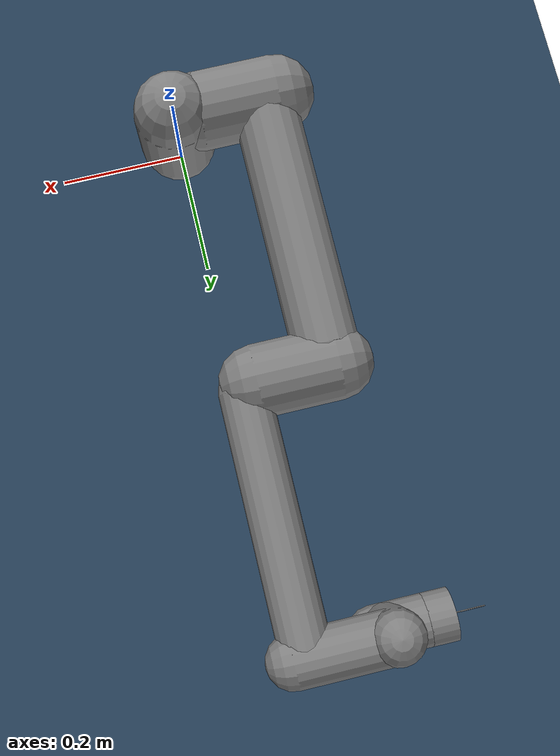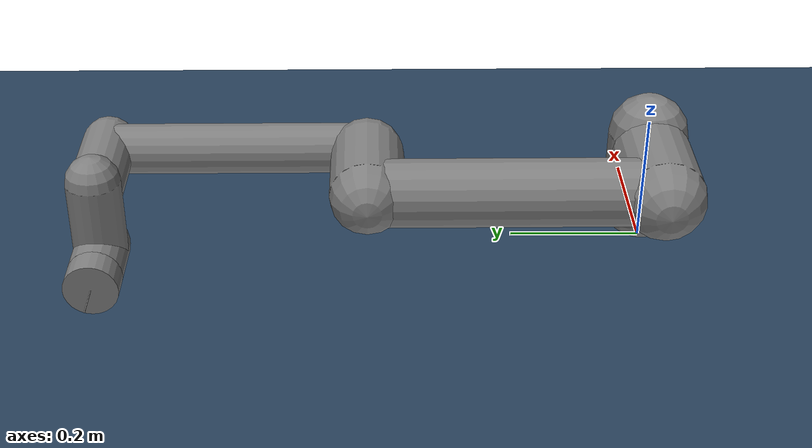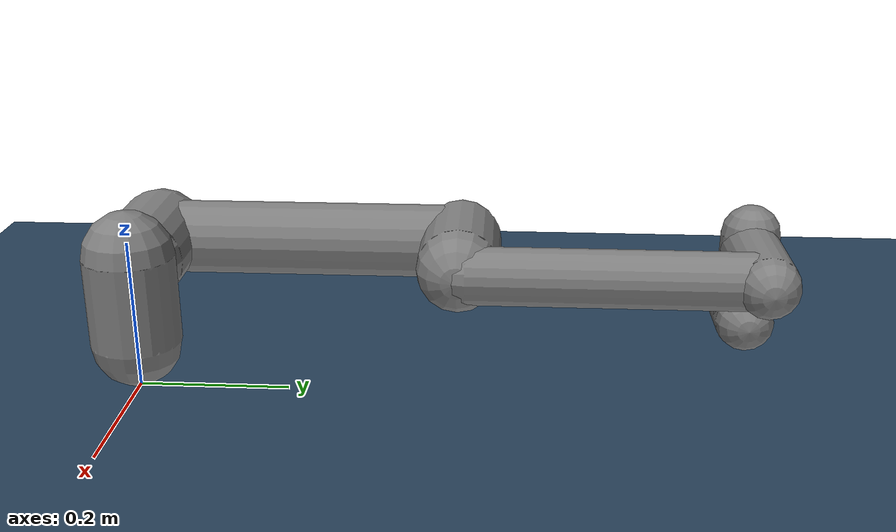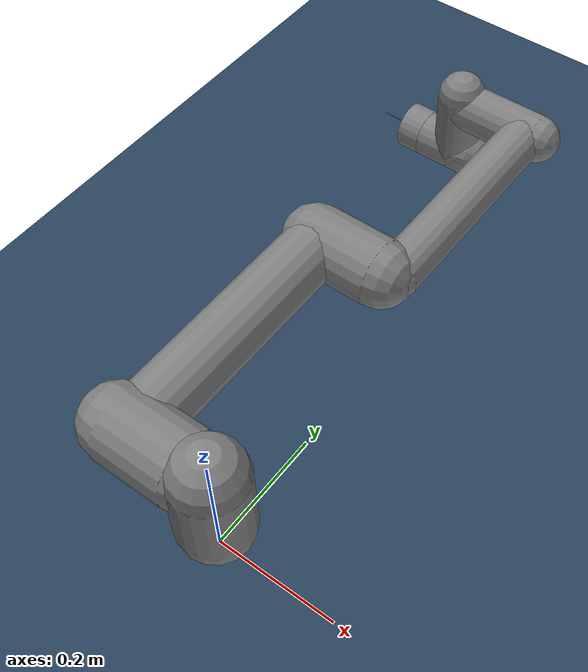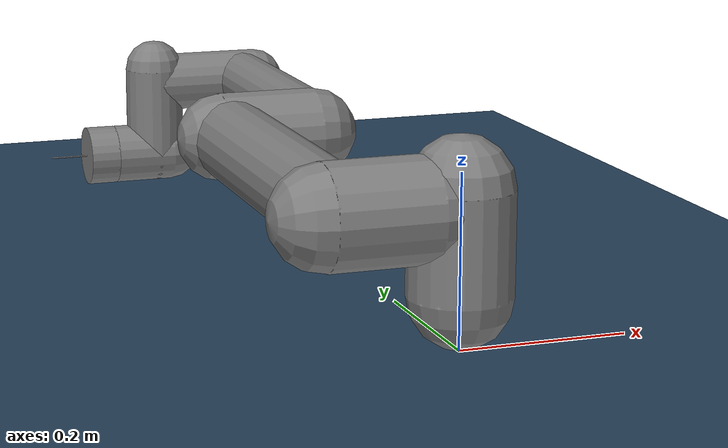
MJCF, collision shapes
<mujoco model="ur5e scene">
  <include file="ur5e.xml"/>

  <statistic center="0.3 0 0.4" extent="0.8"/>

  <visual>
    <headlight diffuse="0.6 0.6 0.6" ambient="0.1 0.1 0.1" specular="0 0 0"/>
    <rgba haze="0.15 0.25 0.35 1"/>
    <global azimuth="120" elevation="-20"/>
  </visual>

  <asset>
    <texture type="skybox" builtin="gradient" rgb1="0.3 0.5 0.7" rgb2="0 0 0" width="512" height="3072"/>
    <texture type="2d" name="groundplane" builtin="checker" mark="edge" rgb1="0.2 0.3 0.4" rgb2="0.1 0.2 0.3"
      markrgb="0.8 0.8 0.8" width="300" height="300"/>
    <material name="groundplane" texture="groundplane" texuniform="true" texrepeat="5 5" reflectance="0.2"/>
    <!-- The table material is still defined if needed for other objects -->
    <material name="table_material" rgba="0.8 0.6 0.4 1"/>
  </asset>

  <worldbody>
    <light pos="0 0 1.5" dir="0 0 -1" directional="true"/>
    <geom name="floor" size="0 0 0.05" type="plane" material="groundplane"
          solimp="0.99 0.99 0.01" solref="0.001 1" friction="0 0 0"/>

    <camera name="fixed" pos="-2 -2 2" xyaxes="1 -1 0 0.5 0.5 1"/>
    <camera name="fixed2" pos="-1 -1.3 1.3" xyaxes="1 -1 0 0.5 0.5 1"/>
    <camera name="fixed3" pos="-0.5 -0.5 0.1" xyaxes="0 -1 0 0 0 1"/>
    <camera name="fixed4" pos="-0.5 -0.5 0.4" xyaxes="0 -1 0 0 0 1"/>

    <!-- The table block has been removed -->
  </worldbody>
</mujoco>

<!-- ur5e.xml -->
<mujoco model="ur5e">
  <compiler angle="radian" meshdir="assets" autolimits="true"/>

  <option integrator="implicitfast"/>

  <default>
    <default class="ur5e">
      <material specular="0.5" shininess="0.25"/>
      <joint axis="0 1 0" range="-6.28319 6.28319" armature="0.1"/>
      <general gaintype="fixed" biastype="affine" ctrlrange="-6.2831 6.2831" gainprm="2000" biasprm="0 -2000 -400"
        forcerange="-150 150"/>
      <default class="size3">
        <default class="size3_limited">
          <joint range="-3.1415 3.1415"/>
          <general ctrlrange="-3.1415 3.1415"/>
        </default>
      </default>
      <default class="size1">
        <general gainprm="500" biasprm="0 -500 -100" forcerange="-28 28"/>
      </default>
      <default class="visual">
        <geom type="mesh" contype="0" conaffinity="0" group="2"/>
      </default>
      <default class="collision">
        <geom type="capsule" group="3"/>
        <default class="eef_collision">
          <geom type="cylinder"/>
        </default>
      </default>
      <site size="0.001" rgba="0.5 0.5 0.5 0.3" group="4"/>
    </default>
  </default>

  <asset>
    <material class="ur5e" name="black" rgba="0.033 0.033 0.033 1"/>
    <material class="ur5e" name="jointgray" rgba="0.278 0.278 0.278 1"/>
    <material class="ur5e" name="linkgray" rgba="0.82 0.82 0.82 1"/>
    <material class="ur5e" name="urblue" rgba="0.49 0.678 0.8 1"/>

    <material name="pencil_material" rgba="0.9 0.6 0.3 1"/> <!-- Adjust RGBA values as needed -->

    <mesh file="base_0.obj"/>
    <mesh file="base_1.obj"/>
    <mesh file="shoulder_0.obj"/>
    <mesh file="shoulder_1.obj"/>
    <mesh file="shoulder_2.obj"/>
    <mesh file="upperarm_0.obj"/>
    <mesh file="upperarm_1.obj"/>
    <mesh file="upperarm_2.obj"/>
    <mesh file="upperarm_3.obj"/>
    <mesh file="forearm_0.obj"/>
    <mesh file="forearm_1.obj"/>
    <mesh file="forearm_2.obj"/>
    <mesh file="forearm_3.obj"/>
    <mesh file="wrist1_0.obj"/>
    <mesh file="wrist1_1.obj"/>
    <mesh file="wrist1_2.obj"/>
    <mesh file="wrist2_0.obj"/>
    <mesh file="wrist2_1.obj"/>
    <mesh file="wrist2_2.obj"/>
    <mesh file="wrist3.obj"/>
    <mesh file="pencil.obj"/>
  </asset>

  <worldbody>
    <light name="spotlight" mode="targetbodycom" target="wrist_2_link" pos="0 -1 2"/>
    <body name="base" quat="1 0 0 1" childclass="ur5e">
      <inertial mass="4.0" pos="0 0 0" diaginertia="0.00443333156 0.00443333156 0.0072"/>
      <geom mesh="base_0" material="black" class="visual"/>
      <geom mesh="base_1" material="jointgray" class="visual"/>
      <body name="shoulder_link" pos="0 0 0.163">
        <inertial mass="3.7" pos="0 0 0" diaginertia="0.0102675 0.0102675 0.00666"/>
        <joint name="shoulder_pan_joint" class="size3" axis="0 0 1"/>
        <geom mesh="shoulder_0" material="urblue" class="visual"/>
        <geom mesh="shoulder_1" material="black" class="visual"/>
        <geom mesh="shoulder_2" material="jointgray" class="visual"/>
        <geom class="collision" size="0.06 0.06" pos="0 0 -0.04"/>
        <body name="upper_arm_link" pos="0 0.138 0" quat="1 0 1 0">
          <inertial mass="8.393" pos="0 0 0.2125" diaginertia="0.133886 0.133886 0.0151074"/>
          <joint name="shoulder_lift_joint" class="size3"/>
          <geom mesh="upperarm_0" material="linkgray" class="visual"/>
          <geom mesh="upperarm_1" material="black" class="visual"/>
          <geom mesh="upperarm_2" material="jointgray" class="visual"/>
          <geom mesh="upperarm_3" material="urblue" class="visual"/>
          <geom class="collision" pos="0 -0.04 0" quat="1 1 0 0" size="0.06 0.06"/>
          <geom class="collision" size="0.05 0.2" pos="0 0 0.2"/>
          <body name="forearm_link" pos="0 -0.131 0.425">
            <inertial mass="2.275" pos="0 0 0.196" diaginertia="0.0311796 0.0311796 0.004095"/>
            <joint name="elbow_joint" class="size3_limited"/>
            <geom mesh="forearm_0" material="urblue" class="visual"/>
            <geom mesh="forearm_1" material="linkgray" class="visual"/>
            <geom mesh="forearm_2" material="black" class="visual"/>
            <geom mesh="forearm_3" material="jointgray" class="visual"/>
            <geom class="collision" pos="0 0.08 0" quat="1 1 0 0" size="0.055 0.06"/>
            <geom class="collision" size="0.038 0.19" pos="0 0 0.2"/>
            <body name="wrist_1_link" pos="0 0 0.392" quat="1 0 1 0">
              <inertial mass="1.219" pos="0 0.127 0" diaginertia="0.0025599 0.0025599 0.0021942"/>
              <joint name="wrist_1_joint" class="size1"/>
              <geom mesh="wrist1_0" material="black" class="visual"/>
              <geom mesh="wrist1_1" material="urblue" class="visual"/>
              <geom mesh="wrist1_2" material="jointgray" class="visual"/>
              <geom class="collision" pos="0 0.05 0" quat="1 1 0 0" size="0.04 0.07"/>
              <body name="wrist_2_link" pos="0 0.127 0">
                <inertial mass="1.219" pos="0 0 0.1" diaginertia="0.0025599 0.0025599 0.0021942"/>
                <joint name="wrist_2_joint" axis="0 0 1" class="size1"/>
                <geom mesh="wrist2_0" material="black" class="visual"/>
                <geom mesh="wrist2_1" material="urblue" class="visual"/>
                <geom mesh="wrist2_2" material="jointgray" class="visual"/>
                <geom class="collision" size="0.04 0.06" pos="0 0 0.04"/>
                <geom class="collision" pos="0 0.02 0.1" quat="1 1 0 0" size="0.04 0.04"/>
                <body name="wrist_3_link" pos="0 0 0.1">
                  <inertial mass="0.1889" pos="0 0.0771683 0" quat="1 0 0 1"
                    diaginertia="0.000132134 9.90863e-05 9.90863e-05"/>
                  <joint name="wrist_3_joint" class="size1"/>
                  <geom material="linkgray" mesh="wrist3" class="visual"/>
                  <geom class="eef_collision" pos="0 0.08 0" quat="1 1 0 0" size="0.04 0.02"/>
                  <site name="attachment_site" pos="0 0.1 0" quat="-1 1 0 0"/>

                  <!-- Pencil length is x and the capsul take haf the length as input-->
                  <!-- x = 0.17 [m] (cirka), x/2 = 0.085 -->
                  <body name="pencil_gripper" pos="0 0.1 0" quat="1 0 0 1"> <!-- We need to loook at the composition of this body and its elements, the orientations are weird-->
                      <inertial mass="0.0001" pos="0 0.1 0" diaginertia="0.1 0.1 0.1"/>
                      <geom class="visual" type="capsule"  pos="0.025 0 0" size="0.001 0.025" quat="1 0 1 0"/>
                      <geom class="collision" pos="0.025 0 0" size="0.001 0.025" quat="1 0 1 0" condim="3" friction="1 0.005 0.0001" solref="-2500 -1"/>
                      <site name="pencil_attachment_site" pos="0 0.1 0" quat="-1 1 0 0"/>
                  </body>
                </body>
              </body>
            </body>
          </body>
        </body>
      </body>
    </body>
  </worldbody>

  <actuator>
    <general class="size3" name="shoulder_pan" joint="shoulder_pan_joint"/>
    <general class="size3" name="shoulder_lift" joint="shoulder_lift_joint"/>
    <general class="size3_limited" name="elbow" joint="elbow_joint"/>
    <general class="size1" name="wrist_1" joint="wrist_1_joint"/>
    <general class="size1" name="wrist_2" joint="wrist_2_joint"/>
    <general class="size1" name="wrist_3" joint="wrist_3_joint"/>
  </actuator>

  <keyframe>
    <key name="home" qpos="-1.5708 -1.5708 1.5708 -1.5708 -1.5708 0" ctrl="-1.5708 -1.5708 1.5708 -1.5708 -1.5708 0"/>
  </keyframe>
</mujoco>
